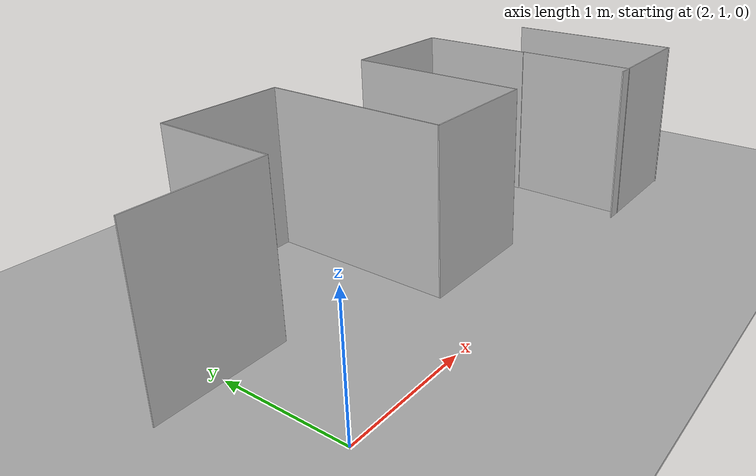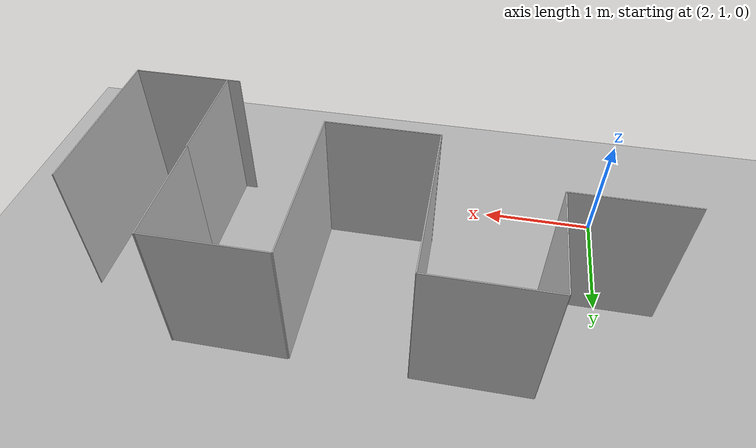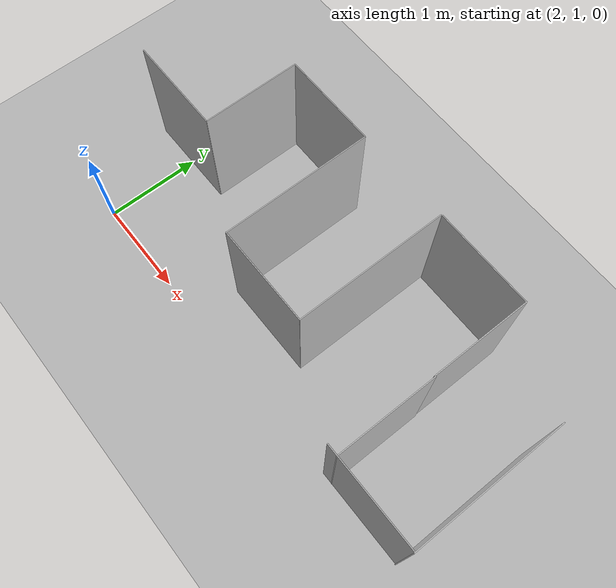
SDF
<sdf version="1.5">
 <world name="default">
  <include><uri>model://sun</uri></include>
  <include><uri>model://floor_dark</uri><pose>0 0 -0.01 0 0 0</pose></include>
  <include><uri>model://wall_1</uri><name>1_wall</name><pose>2 2 0 0 -0 0</pose></include>
  <include><uri>model://wall_1</uri><name>2_wall</name><pose>2.5 2.5 0 0 -0 1.5708</pose></include>
  <include><uri>model://wall_1</uri><name>3_wall</name><pose>3 3 0 0 -0 0</pose></include>
  <include><uri>model://wall_1525</uri><name>4_wall</name><pose>3.5 2.24 0 0 -0 1.5708</pose></include>
  <include><uri>model://wall_1525</uri><name>5_wall</name><pose>4.49304 2.24208 0.0 0 -0 1.5708</pose></include>
  <include><uri>model://wall_1</uri><name>6_wall</name><pose>5.51035 2.51444 0.0 0 -0 1.5708</pose></include>
  <include><uri>model://wall_1</uri><name>7_wall</name><pose>5.00343 3.00667 0 0 -0 0</pose></include>
  <include>
   <uri>model://wall_1525</uri>
   <name>10_wall</name>
   <pose>6.39647 1.78072 0.0 0 -0 1.5708</pose>
  </include>
  <include><uri>model://wall_1</uri><name>11_wall</name><pose>3.99299 1.48244 -0 0 -0 0</pose></include>
  <include><uri>model://wall_1</uri><name>12_wall</name><pose>5.51778 1.52296 0 0 -0 1.5701</pose></include>
  <include><uri>model://wall_1</uri><name>13_wall</name><pose>5.89854 1.03035 0.0 0 -0 0</pose></include>
  <scene>
   <ambient>0.8 0.8 0.8 1</ambient>
   <background>0.8 0.9 1 1</background>
   <shadows>false</shadows>
   <grid>false</grid>
   <origin_visual>false</origin_visual>
  </scene>
  <physics name="default_physics" default="0" type="ode">
   <gravity>0 0 -9.8066</gravity>
   <ode>
    <solver>
     <type>quick</type>
     <iters>10</iters>
     <sor>1.3</sor>
     <use_dynamic_moi_rescaling>0</use_dynamic_moi_rescaling>
    </solver>
    <constraints>
     <cfm>0</cfm>
     <erp>0.2</erp>
     <contact_max_correcting_vel>100</contact_max_correcting_vel>
     <contact_surface_layer>0.001</contact_surface_layer>
    </constraints>
   </ode>
   <max_step_size>0.004</max_step_size>
   <real_time_factor>1</real_time_factor>
   <real_time_update_rate>250</real_time_update_rate>
   <magnetic_field>6.0e-6 2.3e-5 -4.2e-5</magnetic_field>
  </physics>
 </world>
</sdf>

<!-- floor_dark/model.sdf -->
<sdf version="1.5">
  <model name="floor_dark">
    <static>true</static>
    <link name="link">
      <collision name="collision">
        <geometry>
          <box>
            <size>200 200 .02</size>
          </box>
        </geometry>
      </collision>
      <visual name="visual">
        <cast_shadows>false</cast_shadows>
        <geometry>
          <box>
            <size>200 200 .02</size>
          </box>
        </geometry>
        <material>
          <script>
            <uri>model://floor_dark/materials/scripts</uri>
            <uri>model://floor_dark/materials/textures</uri>
            <name>floor</name>
          </script>
        </material>
      </visual>
    </link>
  </model>
</sdf>

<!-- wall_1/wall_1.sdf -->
<sdf version="1.5">
  <model name="wall_1">
    <static>true</static>
    <link name="link">
      <pose>0 0 0.65 0 0 0</pose>
      <inertial>
        <mass>1.0</mass>
        <inertia>
          <ixx>0.0</ixx>
          <ixy>0.0</ixy>
          <ixz>0.0</ixz>
          <iyy>0.0</iyy>
          <iyz>0.0</iyz>
          <izz>0.0</izz>
        </inertia>
      </inertial>
      <collision name="collision">
        <geometry>
          <box>
            <size>1.0 0.01 1.30</size>
          </box>
        </geometry>
      </collision>
      <visual name="visual">
        <geometry>
          <box>
            <size>1.0 0.01 1.30</size>
          </box>
        </geometry>
        <material>
          <script>
            <uri>model://wall_1/materials/scripts</uri>
            <uri>model://wall_1/materials/textures</uri>
            <name>wall</name>
          </script>
        </material>
      </visual>
    </link>
  </model>
</sdf>

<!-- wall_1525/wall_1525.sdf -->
<sdf version="1.5">
  <model name="wall_1525">
    <static>true</static>
    <link name="link">
      <pose>0 0 0.65 0 0 0</pose>
      <inertial>
        <mass>1.0</mass>
        <inertia>
          <ixx>0.0</ixx>
          <ixy>0.0</ixy>
          <ixz>0.0</ixz>
          <iyy>0.0</iyy>
          <iyz>0.0</iyz>
          <izz>0.0</izz>
        </inertia>
      </inertial>
      <collision name="collision">
        <geometry>
          <box>
            <size>1.525 0.01 1.30</size>
          </box>
        </geometry>
      </collision>
      <visual name="visual">
        <geometry>
          <box>
            <size>1.525 0.01 1.30</size>
          </box>
        </geometry>
        <material>
          <script>
            <uri>model://wall_1525/materials/scripts</uri>
            <uri>model://wall_1525/materials/textures</uri>
            <name>wall</name>
          </script>
        </material>
      </visual>
    </link>
  </model>
</sdf>
